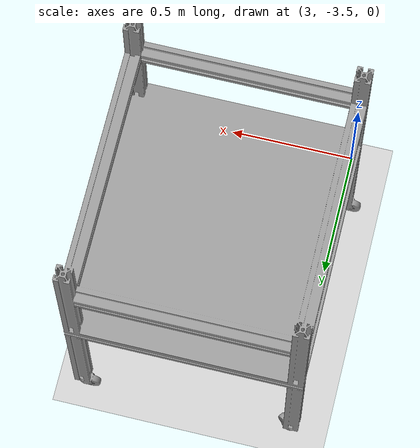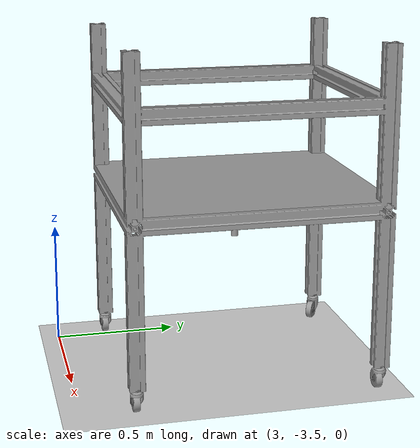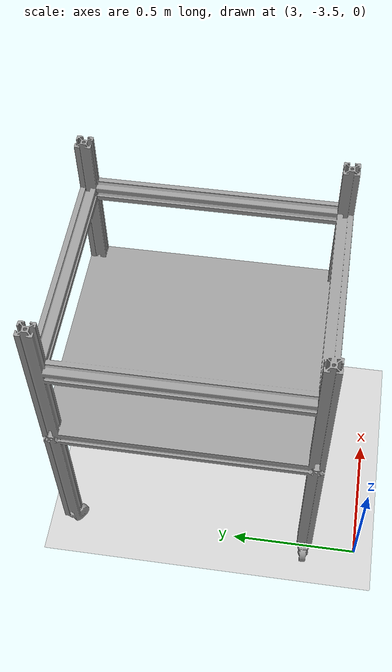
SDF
<sdf version="1.6">
 <world name="default">
  <light name="sun" type="directional">
   <pose>0 0 10 0 -0 0</pose>
   <diffuse>0.8 0.8 0.8 1</diffuse>
   <specular>0.1 0.1 0.1 1</specular>
   <attenuation>
    <range>1000</range>
    <constant>0.9</constant>
    <linear>0.01</linear>
    <quadratic>0.001</quadratic>
   </attenuation>
   <direction>-0.5 0.5 -1</direction>
  </light>
  <model name="ground_plane">
   <static>1</static>
   <link name="link">
    <collision name="collision">
     <geometry><plane><normal>0 0 1</normal><size>100 100</size></plane></geometry>
     <surface><friction><ode><mu>100</mu><mu2>50</mu2></ode></friction></surface>
    </collision>
    <visual name="visual">
     <cast_shadows>0</cast_shadows>
     <geometry><plane><normal>0 0 1</normal><size>100 100</size></plane></geometry>
     <material>
      <script><uri>file://media/materials/scripts/gazebo.material</uri><name>Gazebo/Grey</name></script>
     </material>
    </visual>
   </link>
  </model>
  <physics name="default_physics" default="0" type="ode">
   <max_step_size>0.01</max_step_size>
   <real_time_factor>1</real_time_factor>
   <real_time_update_rate>100</real_time_update_rate>
  </physics>
  <gravity>0 0 -9.8</gravity>
  <magnetic_field>6e-06 2.3e-05 -4.2e-05</magnetic_field>
  <atmosphere type="adiabatic"/>
  <scene><ambient>0.4 0.4 0.4 1</ambient><background>0.7 0.7 0.7 1</background><shadows>1</shadows></scene>
  <spherical_coordinates>
   <surface_model>EARTH_WGS84</surface_model>
   <latitude_deg>0</latitude_deg>
   <longitude_deg>0</longitude_deg>
   <elevation>0</elevation>
   <heading_deg>0</heading_deg>
  </spherical_coordinates>
  <model name="single_shelf">
   <link name="base_link">
    <inertial>
     <pose>0 0 -0.002742 0 -0 0</pose>
     <mass>10.21</mass>
     <inertia>
      <ixx>0.206066</ixx>
      <ixy>0</ixy>
      <ixz>-1.27742e-07</ixz>
      <iyy>0.213736</iyy>
      <iyz>0</iyz>
      <izz>0.345315</izz>
     </inertia>
    </inertial>
    <visual name="base_link_visual">
     <pose>0 0 0.37 0 -0 0</pose>
     <geometry>
      <mesh><scale>1 1 1</scale><uri>/home/ych/ws/src/solamr/solamr_sim/mesh/single_shelf.stl</uri></mesh>
     </geometry>
     <material>
      <script><name>Gazebo/Gray</name><uri>file://media/materials/scripts/gazebo.material</uri></script>
     </material>
    </visual>
    <collision name="base_link_collision">
     <pose>0 0 0.37 0 -0 0</pose>
     <geometry>
      <mesh><uri>/home/ych/ws/src/solamr/solamr_sim/mesh/single_shelf.stl</uri><scale>1 1 1</scale></mesh>
     </geometry>
     <surface>
      <friction>
       <ode><mu>100</mu><mu2>100</mu2><fdir1>0 0 0</fdir1><slip1>0</slip1><slip2>0</slip2></ode>
       <torsional>
        <coefficient>1</coefficient>
        <patch_radius>0</patch_radius>
        <surface_radius>0</surface_radius>
        <use_patch_radius>1</use_patch_radius>
        <ode><slip>0</slip></ode>
       </torsional>
      </friction>
      <bounce><restitution_coefficient>0</restitution_coefficient><threshold>1e+06</threshold></bounce>
      <contact>
       <collide_without_contact>0</collide_without_contact>
       <collide_without_contact_bitmask>1</collide_without_contact_bitmask>
       <collide_bitmask>1</collide_bitmask>
       <ode>
        <soft_cfm>0</soft_cfm>
        <soft_erp>0.2</soft_erp>
        <kp>1e+13</kp>
        <kd>1</kd>
        <max_vel>0.01</max_vel>
        <min_depth>0.001</min_depth>
       </ode>
       <bullet>
        <split_impulse>1</split_impulse>
        <split_impulse_penetration_threshold>-0.01</split_impulse_penetration_threshold>
        <soft_cfm>0</soft_cfm>
        <soft_erp>0.2</soft_erp>
        <kp>1e+13</kp>
        <kd>1</kd>
       </bullet>
      </contact>
     </surface>
    </collision>
   </link>
   <static>0</static>
   <pose>3.40231 -2.81145 0.165867 0 -0 0</pose>
  </model>
 </world>
</sdf>
